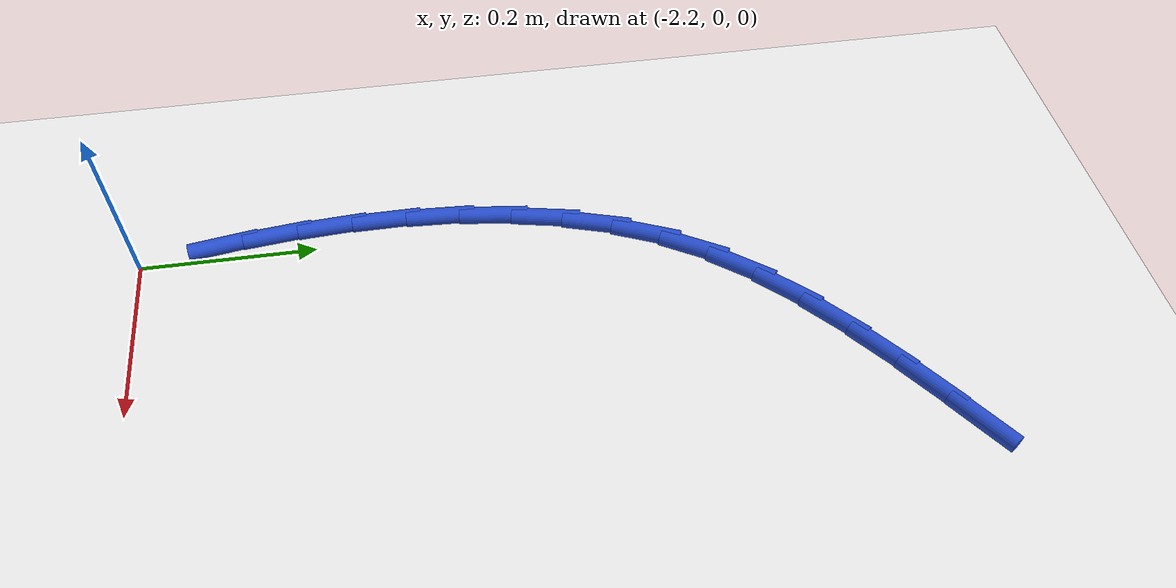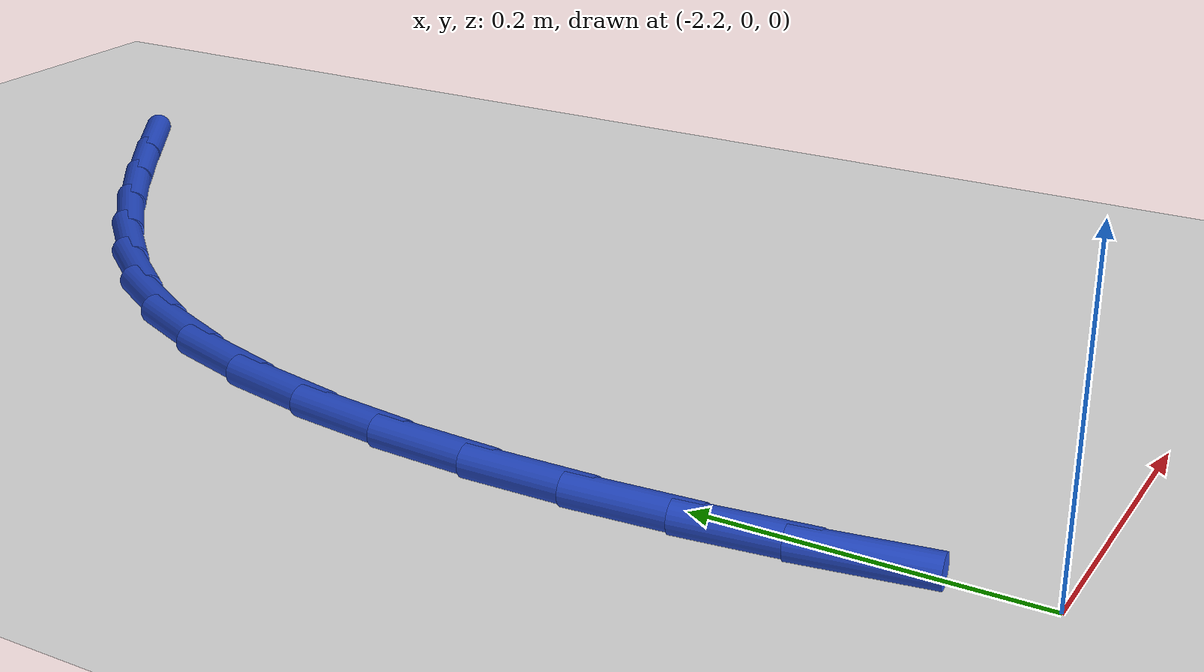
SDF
<sdf version="1.6">
 <world name="default">
  <model name="ground_plane">
   <static>1</static>
   <link name="link">
    <collision name="collision">
     <geometry><plane><normal>0 0 1</normal><size>100 100</size></plane></geometry>
     <surface><friction><ode><mu>100</mu><mu2>50</mu2></ode></friction></surface>
    </collision>
    <visual name="visual">
     <cast_shadows>0</cast_shadows>
     <geometry><plane><normal>0 0 1</normal><size>100 100</size></plane></geometry>
     <material>
      <script><uri>file://media/materials/scripts/gazebo.material</uri><name>Gazebo/WhiteGlow</name></script>
     </material>
    </visual>
   </link>
  </model>
  <model name="line">
   <link name="link_45">
    <pose>-1.8628248825475955 0.8682378306956973 0.01 0 1.57 0.6066712280206658</pose>
    <collision name="collision">
     <geometry><cylinder><radius>0.01</radius><length>0.08</length></cylinder></geometry>
    </collision>
    <visual name="visual">
     <material>
      <script><name>Gazebo/Blue</name><uri>file://media/materials/scripts/gazebo.material</uri></script>
     </material>
     <geometry><cylinder><radius>0.01</radius><length>0.08</length></cylinder></geometry>
    </visual>
   </link>
   <link name="link_46">
    <pose>-1.9142763828125897 0.8325317496001833 0.01 0 1.57 0.6297149563342367</pose>
    <collision name="collision">
     <geometry><cylinder><radius>0.01</radius><length>0.08</length></cylinder></geometry>
    </collision>
    <visual name="visual">
     <material>
      <script><name>Gazebo/Blue</name><uri>file://media/materials/scripts/gazebo.material</uri></script>
     </material>
     <geometry><cylinder><radius>0.01</radius><length>0.08</length></cylinder></geometry>
    </visual>
   </link>
   <link name="link_47">
    <pose>-1.9643700973231362 0.7960295496400107 0.01 0 1.57 0.670994321831385</pose>
    <collision name="collision">
     <geometry><cylinder><radius>0.01</radius><length>0.08</length></cylinder></geometry>
    </collision>
    <visual name="visual">
     <material>
      <script><name>Gazebo/Blue</name><uri>file://media/materials/scripts/gazebo.material</uri></script>
     </material>
     <geometry><cylinder><radius>0.01</radius><length>0.08</length></cylinder></geometry>
    </visual>
   </link>
   <link name="link_48">
    <pose>-2.012174061618032 0.758079231231296 0.01 0 1.57 0.73190240990492</pose>
    <collision name="collision">
     <geometry><cylinder><radius>0.01</radius><length>0.08</length></cylinder></geometry>
    </collision>
    <visual name="visual">
     <material>
      <script><name>Gazebo/Blue</name><uri>file://media/materials/scripts/gazebo.material</uri></script>
     </material>
     <geometry><cylinder><radius>0.01</radius><length>0.08</length></cylinder></geometry>
    </visual>
   </link>
   <link name="link_49">
    <pose>-2.0567563112360743 0.7180287947901547 0.01 0 1.57 0.813913218558214</pose>
    <collision name="collision">
     <geometry><cylinder><radius>0.01</radius><length>0.08</length></cylinder></geometry>
    </collision>
    <visual name="visual">
     <material>
      <script><name>Gazebo/Blue</name><uri>file://media/materials/scripts/gazebo.material</uri></script>
     </material>
     <geometry><cylinder><radius>0.01</radius><length>0.08</length></cylinder></geometry>
    </visual>
   </link>
   <link name="link_50">
    <pose>-2.0971848817160614 0.675226240732702 0.01 0 1.57 0.9178348090265575</pose>
    <collision name="collision">
     <geometry><cylinder><radius>0.01</radius><length>0.08</length></cylinder></geometry>
    </collision>
    <visual name="visual">
     <material>
      <script><name>Gazebo/Blue</name><uri>file://media/materials/scripts/gazebo.material</uri></script>
     </material>
     <geometry><cylinder><radius>0.01</radius><length>0.08</length></cylinder></geometry>
    </visual>
   </link>
   <link name="link_51">
    <pose>-2.132527808596791 0.629019569475054 0.01 0 1.57 1.0418535725453544</pose>
    <collision name="collision">
     <geometry><cylinder><radius>0.01</radius><length>0.08</length></cylinder></geometry>
    </collision>
    <visual name="visual">
     <material>
      <script><name>Gazebo/Blue</name><uri>file://media/materials/scripts/gazebo.material</uri></script>
     </material>
     <geometry><cylinder><radius>0.01</radius><length>0.08</length></cylinder></geometry>
    </visual>
   </link>
   <link name="link_52">
    <pose>-2.161886871638671 0.5787900077098194 0.01 0 1.57 1.166652960435542</pose>
    <collision name="collision">
     <geometry><cylinder><radius>0.01</radius><length>0.08</length></cylinder></geometry>
    </collision>
    <visual name="visual">
     <material>
      <script><name>Gazebo/Blue</name><uri>file://media/materials/scripts/gazebo.material</uri></script>
     </material>
     <geometry><cylinder><radius>0.01</radius><length>0.08</length></cylinder></geometry>
    </visual>
   </link>
   <link name="link_53">
    <pose>-2.185060952688556 0.5246051842916212 0.01 0 1.57 1.2758952845130096</pose>
    <collision name="collision">
     <geometry><cylinder><radius>0.01</radius><length>0.08</length></cylinder></geometry>
    </collision>
    <visual name="visual">
     <material>
      <script><name>Gazebo/Blue</name><uri>file://media/materials/scripts/gazebo.material</uri></script>
     </material>
     <geometry><cylinder><radius>0.01</radius><length>0.08</length></cylinder></geometry>
    </visual>
   </link>
   <link name="link_54">
    <pose>-2.202504774185289 0.46717850207149475 0.01 0 1.57 1.3700696702811133</pose>
    <collision name="collision">
     <geometry><cylinder><radius>0.01</radius><length>0.08</length></cylinder></geometry>
    </collision>
    <visual name="visual">
     <material>
      <script><name>Gazebo/Blue</name><uri>file://media/materials/scripts/gazebo.material</uri></script>
     </material>
     <geometry><cylinder><radius>0.01</radius><length>0.08</length></cylinder></geometry>
    </visual>
   </link>
   <link name="link_55">
    <pose>-2.214698540858783 0.4072484550600467 0.01 0 1.57 1.4510394278436127</pose>
    <collision name="collision">
     <geometry><cylinder><radius>0.01</radius><length>0.08</length></cylinder></geometry>
    </collision>
    <visual name="visual">
     <material>
      <script><name>Gazebo/Blue</name><uri>file://media/materials/scripts/gazebo.material</uri></script>
     </material>
     <geometry><cylinder><radius>0.01</radius><length>0.08</length></cylinder></geometry>
    </visual>
   </link>
   <link name="link_56">
    <pose>-2.222122457438958 0.3455535372678836 0.01 0 1.57 1.5208664547395623</pose>
    <collision name="collision">
     <geometry><cylinder><radius>0.01</radius><length>0.08</length></cylinder></geometry>
    </collision>
    <visual name="visual">
     <material>
      <script><name>Gazebo/Blue</name><uri>file://media/materials/scripts/gazebo.material</uri></script>
     </material>
     <geometry><cylinder><radius>0.01</radius><length>0.08</length></cylinder></geometry>
    </visual>
   </link>
   <link name="link_57">
    <pose>-2.2252567286557303 0.2828322427056128 0.01 0 1.57 -1.5600813229464765</pose>
    <collision name="collision">
     <geometry><cylinder><radius>0.01</radius><length>0.08</length></cylinder></geometry>
    </collision>
    <visual name="visual">
     <material>
      <script><name>Gazebo/Blue</name><uri>file://media/materials/scripts/gazebo.material</uri></script>
     </material>
     <geometry><cylinder><radius>0.01</radius><length>0.08</length></cylinder></geometry>
    </visual>
   </link>
   <link name="link_58">
    <pose>-2.224581559239016 0.21982306538383992 0.01 0 1.57 -1.5068730332348645</pose>
    <collision name="collision">
     <geometry><cylinder><radius>0.01</radius><length>0.08</length></cylinder></geometry>
    </collision>
    <visual name="visual">
     <material>
      <script><name>Gazebo/Blue</name><uri>file://media/materials/scripts/gazebo.material</uri></script>
     </material>
     <geometry><cylinder><radius>0.01</radius><length>0.08</length></cylinder></geometry>
    </visual>
   </link>
   <link name="link_59">
    <pose>-2.2205771539187342 0.1572644993131726 0.01 0 1.57 -1.4594008290258333</pose>
    <collision name="collision">
     <geometry><cylinder><radius>0.01</radius><length>0.08</length></cylinder></geometry>
    </collision>
    <visual name="visual">
     <material>
      <script><name>Gazebo/Blue</name><uri>file://media/materials/scripts/gazebo.material</uri></script>
     </material>
     <geometry><cylinder><radius>0.01</radius><length>0.08</length></cylinder></geometry>
    </visual>
   </link>
   <link name="link_60">
    <pose>-2.213707093868656 0.09584711807799565 0.01 0 1.57 -1.4147966515342987</pose>
    <collision name="collision">
     <geometry><cylinder><radius>0.01</radius><length>0.08</length></cylinder></geometry>
    </collision>
    <visual name="visual">
     <material>
      <script><name>Gazebo/Blue</name><uri>file://media/materials/scripts/gazebo.material</uri></script>
     </material>
     <geometry><cylinder><radius>0.01</radius><length>0.08</length></cylinder></geometry>
    </visual>
   </link>
  </model>
 </world>
</sdf>
